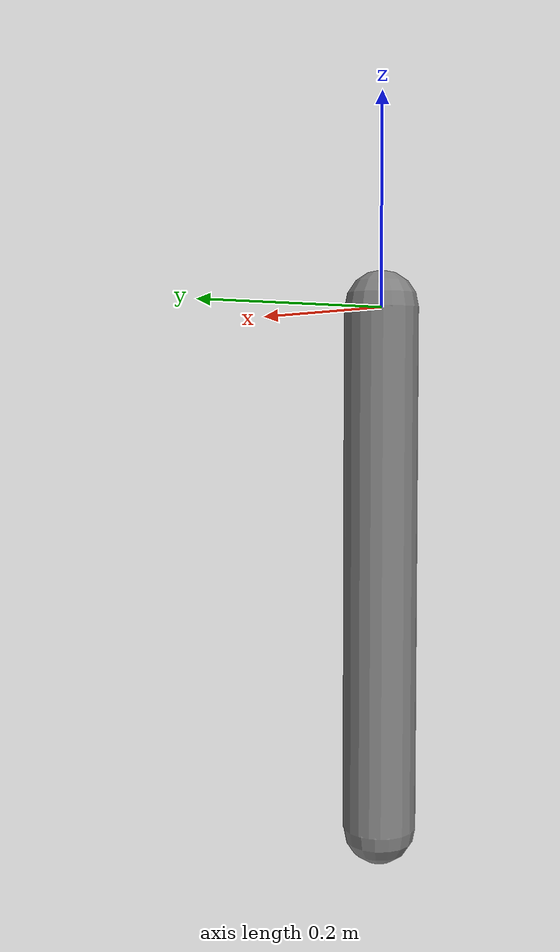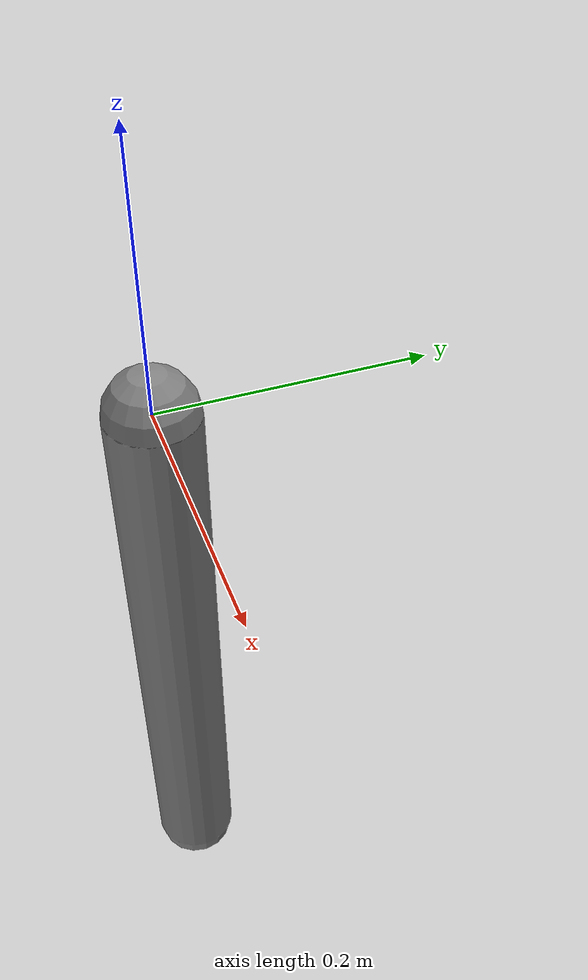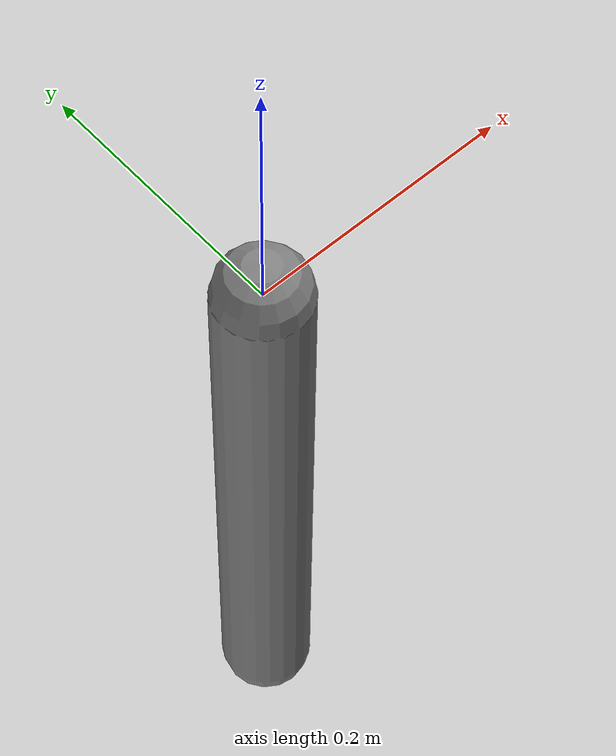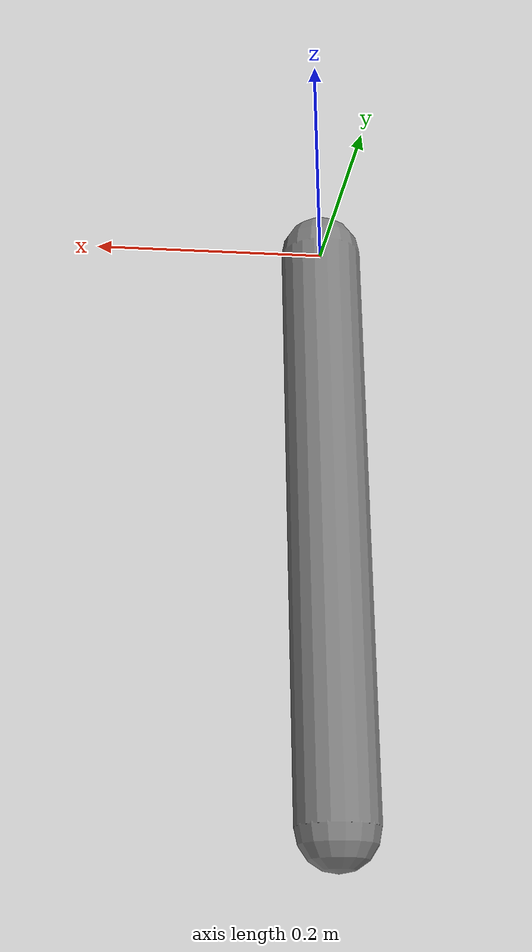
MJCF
<mujoco model="native_upgrade_smooth_pendulum">
  <compiler angle="radian"/>
  <option timestep="0.004" gravity="0 0 0" integrator="RK4"/>
  <default>
    <joint armature="0.01" damping="0.08"/>
    <geom contype="0" conaffinity="0" density="500"/>
  </default>
  <worldbody>
    <body name="pendulum" pos="0 0 0">
      <joint name="theta" type="hinge" axis="0 1 0"/>
      <geom name="pendulum_rod" type="capsule" fromto="0 0 0 0 0 -0.5" size="0.035"/>
    </body>
  </worldbody>
  <actuator>
    <motor name="drive" joint="theta" gear="1" ctrllimited="true" ctrlrange="-1 1"/>
  </actuator>
  <sensor>
    <jointpos name="theta_position" joint="theta"/>
  </sensor>
</mujoco>
